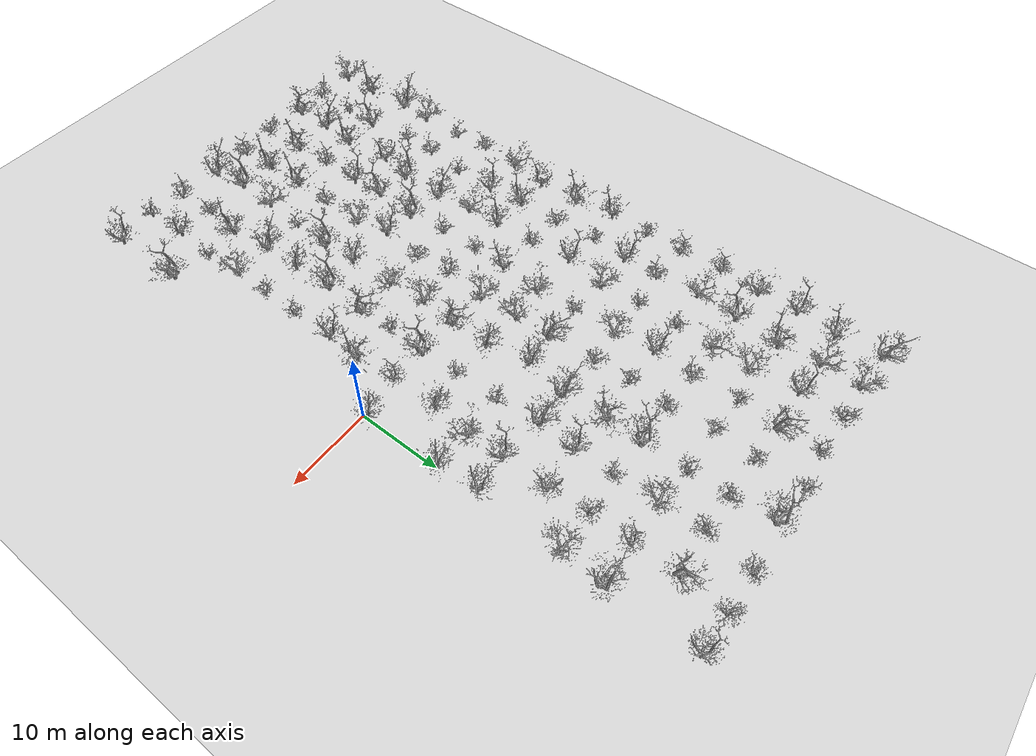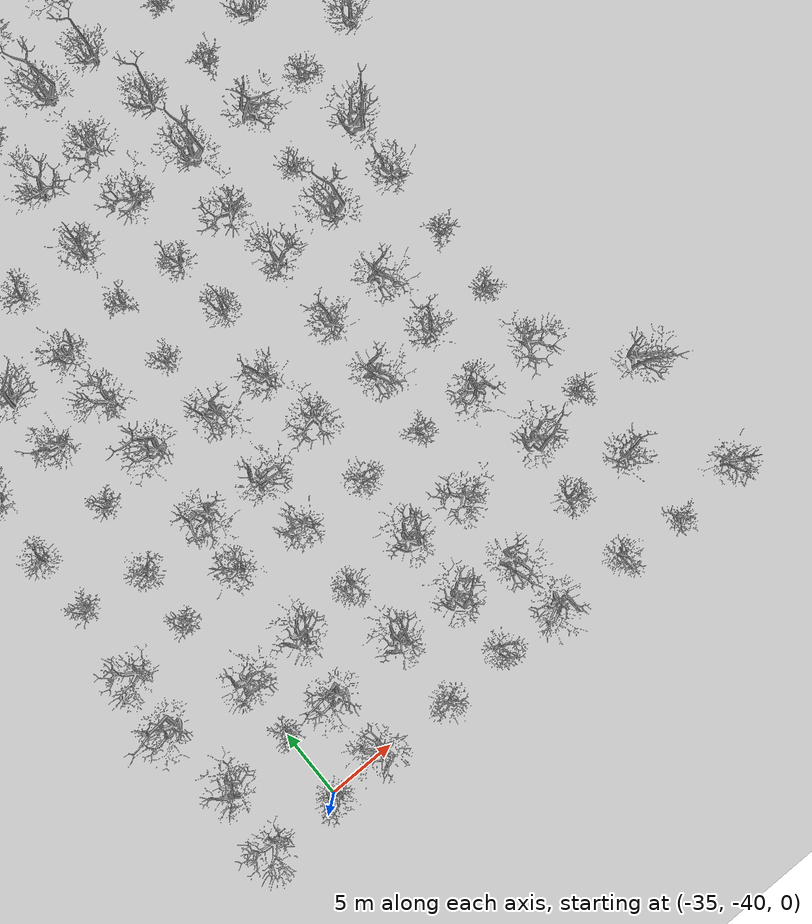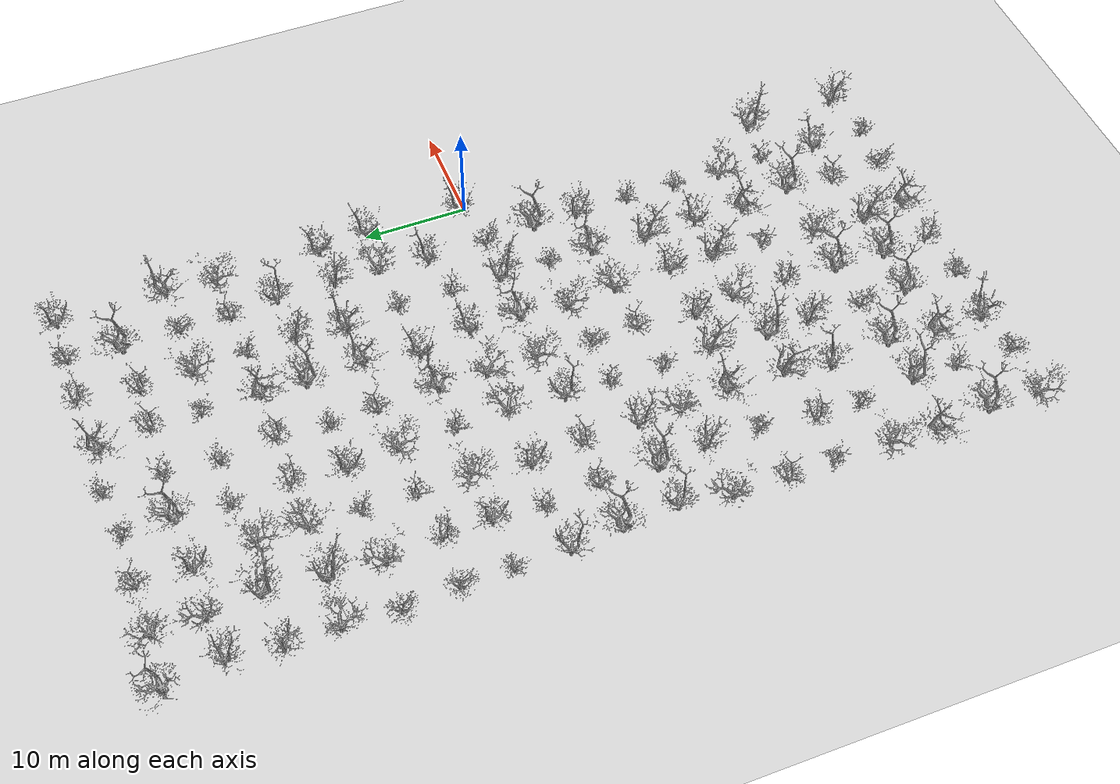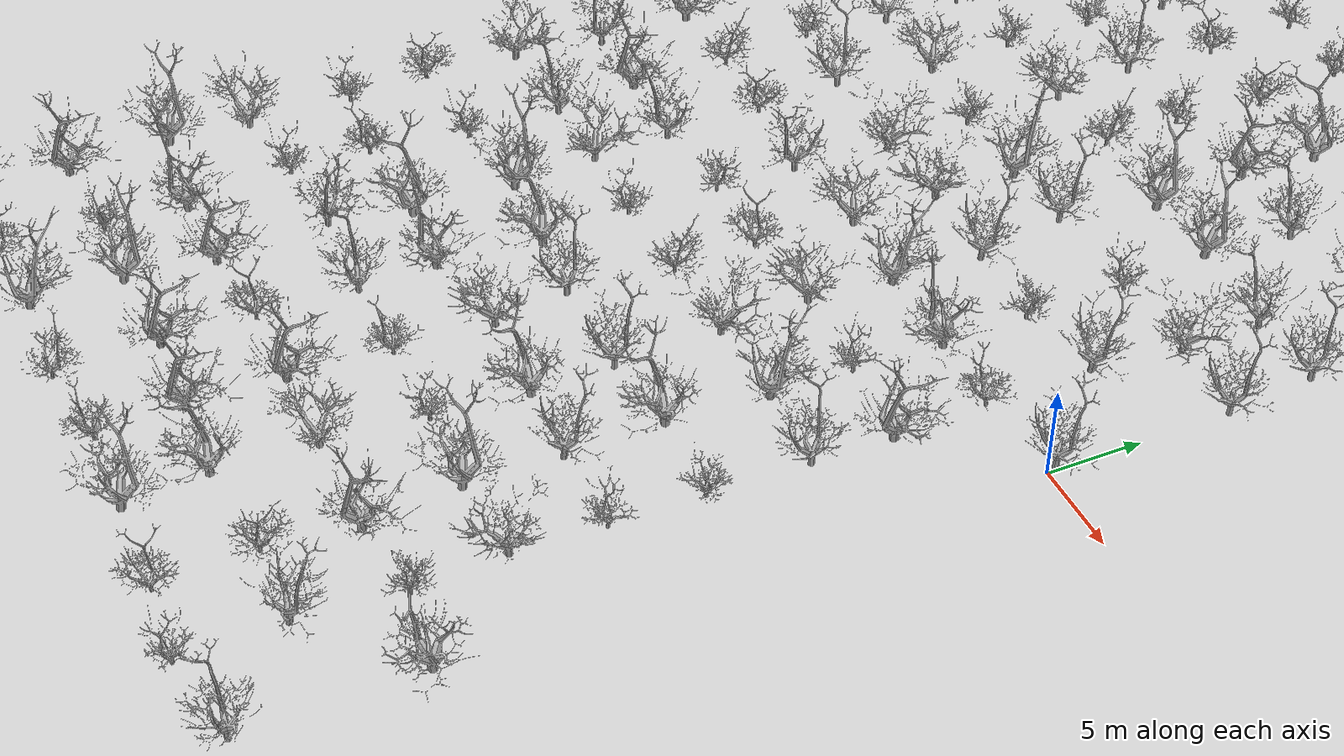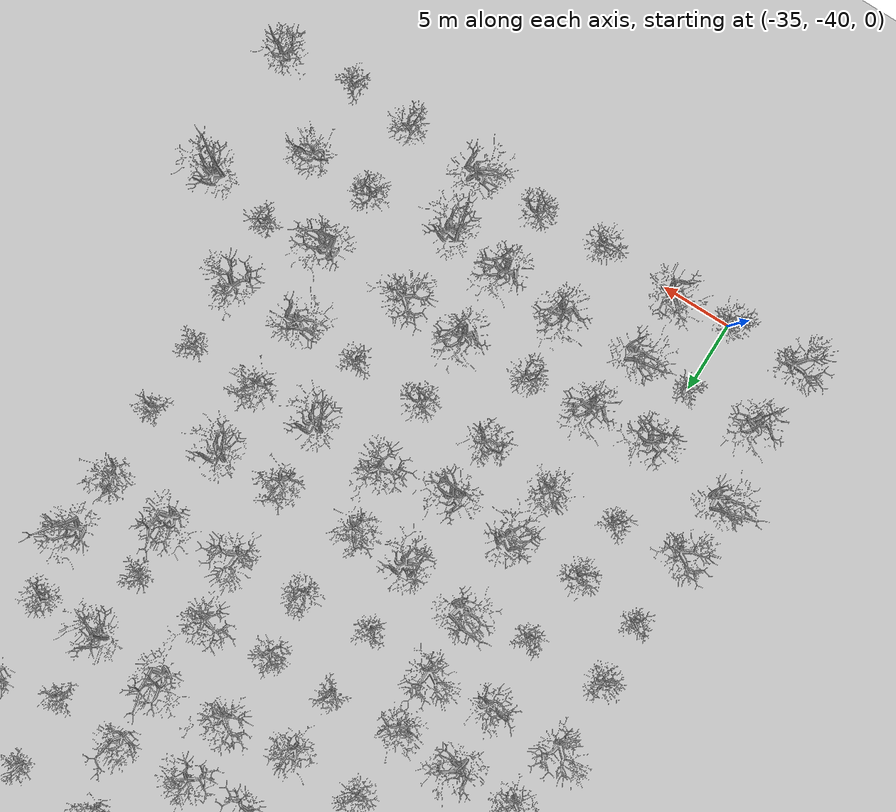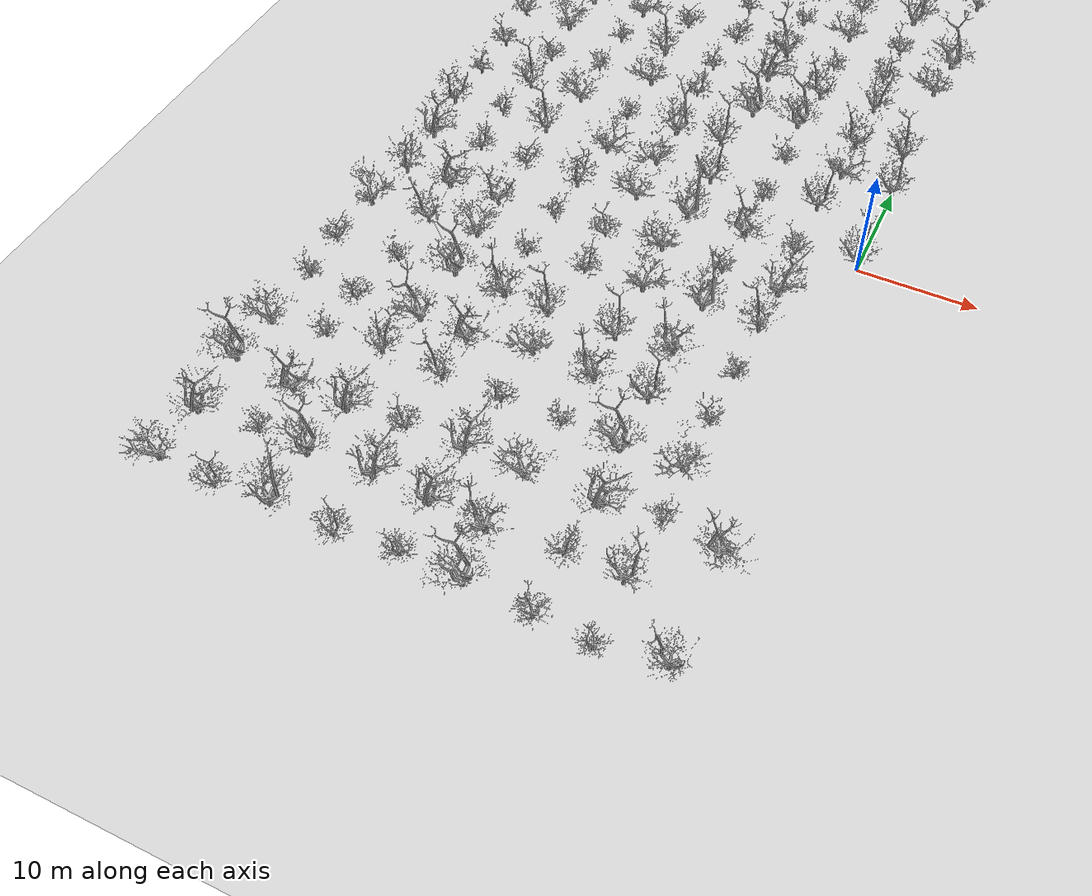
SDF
<sdf version="1.8">
 <world name="random_flat_forest">
  <include><uri>model://my_sun</uri></include>
  <model name="ground_plane">
   <static>true</static>
   <link name="link">
    <collision name="collision">
     <geometry><plane><normal>0 0 1</normal><size>100 100</size></plane></geometry>
    </collision>
    <visual name="visual">
     <geometry><plane><normal>0 0 1</normal><size>100 100</size></plane></geometry>
     <material>
      <script><uri>file://media/materials/scripts/gazebo.material</uri><name>Gazebo/Gray</name></script>
     </material>
    </visual>
   </link>
  </model>
  <include>
   <uri>model://random_tree_0</uri>
   <name>tree_0</name>
   <pose>-40.01 -39.97 0 0 0 3.14</pose>
   <scale>0.93 0.94 0.96</scale>
  </include>
  <include>
   <uri>model://random_tree_2</uri>
   <name>tree_1</name>
   <pose>-40.01 -35.19 0 0 0 4.99</pose>
   <scale>1.17 1.10 1.18</scale>
  </include>
  <include>
   <uri>model://random_tree_2</uri>
   <name>tree_2</name>
   <pose>-40.37 -29.66 0 0 0 1.32</pose>
   <scale>0.91 0.86 1.12</scale>
  </include>
  <include>
   <uri>model://random_tree_0</uri>
   <name>tree_3</name>
   <pose>-40.09 -25.31 0 0 0 2.76</pose>
   <scale>0.94 0.99 0.94</scale>
  </include>
  <include>
   <uri>model://random_tree_1</uri>
   <name>tree_4</name>
   <pose>-40.06 -19.65 0 0 0 3.31</pose>
   <scale>0.97 0.99 1.16</scale>
  </include>
  <include>
   <uri>model://random_tree_4</uri>
   <name>tree_5</name>
   <pose>-40.36 -15.18 0 0 0 3.28</pose>
   <scale>1.16 1.10 0.96</scale>
  </include>
  <include>
   <uri>model://random_tree_0</uri>
   <name>tree_6</name>
   <pose>-40.05 -10.08 0 0 0 1.31</pose>
   <scale>1.19 1.26 0.94</scale>
  </include>
  <include>
   <uri>model://random_tree_3</uri>
   <name>tree_7</name>
   <pose>-39.37 -5.23 0 0 0 4.28</pose>
   <scale>1.16 1.12 1.19</scale>
  </include>
  <include>
   <uri>model://random_tree_2</uri>
   <name>tree_8</name>
   <pose>-39.62 0.01 0 0 0 5.11</pose>
   <scale>1.17 1.12 1.05</scale>
  </include>
  <include>
   <uri>model://random_tree_3</uri>
   <name>tree_9</name>
   <pose>-40.18 5.02 0 0 0 3.60</pose>
   <scale>1.07 1.17 1.02</scale>
  </include>
  <include>
   <uri>model://random_tree_1</uri>
   <name>tree_10</name>
   <pose>-40.07 10.03 0 0 0 0.70</pose>
   <scale>1.18 1.29 0.99</scale>
  </include>
  <include>
   <uri>model://random_tree_4</uri>
   <name>tree_11</name>
   <pose>-39.96 14.83 0 0 0 0.68</pose>
   <scale>1.03 0.97 1.19</scale>
  </include>
  <include>
   <uri>model://random_tree_4</uri>
   <name>tree_12</name>
   <pose>-40.37 20.08 0 0 0 0.91</pose>
   <scale>0.93 0.94 1.06</scale>
  </include>
  <include>
   <uri>model://random_tree_0</uri>
   <name>tree_13</name>
   <pose>-40.07 25.15 0 0 0 5.13</pose>
   <scale>1.17 1.10 0.93</scale>
  </include>
  <include>
   <uri>model://random_tree_3</uri>
   <name>tree_14</name>
   <pose>-40.19 30.01 0 0 0 1.97</pose>
   <scale>1.08 1.01 0.97</scale>
  </include>
  <include>
   <uri>model://random_tree_3</uri>
   <name>tree_15</name>
   <pose>-39.61 34.84 0 0 0 3.02</pose>
   <scale>1.16 1.19 1.04</scale>
  </include>
  <include>
   <uri>model://random_tree_2</uri>
   <name>tree_16</name>
   <pose>-40.22 40.05 0 0 0 0.13</pose>
   <scale>1.04 1.07 1.15</scale>
  </include>
  <include>
   <uri>model://random_tree_4</uri>
   <name>tree_17</name>
   <pose>-34.87 -40.34 0 0 0 6.01</pose>
   <scale>1.14 1.09 1.17</scale>
  </include>
  <include>
   <uri>model://random_tree_1</uri>
   <name>tree_18</name>
   <pose>-34.81 -34.84 0 0 0 4.58</pose>
   <scale>0.99 0.95 1.01</scale>
  </include>
  <include>
   <uri>model://random_tree_2</uri>
   <name>tree_19</name>
   <pose>-34.69 -30.43 0 0 0 4.15</pose>
   <scale>0.97 0.94 0.97</scale>
  </include>
  <include>
   <uri>model://random_tree_1</uri>
   <name>tree_20</name>
   <pose>-35.39 -24.63 0 0 0 2.93</pose>
   <scale>1.01 1.06 0.95</scale>
  </include>
  <include>
   <uri>model://random_tree_4</uri>
   <name>tree_21</name>
   <pose>-35.30 -20.29 0 0 0 2.47</pose>
   <scale>0.91 0.96 1.04</scale>
  </include>
  <include>
   <uri>model://random_tree_1</uri>
   <name>tree_22</name>
   <pose>-34.55 -15.01 0 0 0 3.07</pose>
   <scale>1.11 1.20 1.17</scale>
  </include>
  <include>
   <uri>model://random_tree_3</uri>
   <name>tree_23</name>
   <pose>-34.55 -9.85 0 0 0 2.32</pose>
   <scale>1.09 1.11 1.16</scale>
  </include>
  <include>
   <uri>model://random_tree_2</uri>
   <name>tree_24</name>
   <pose>-35.03 -5.23 0 0 0 4.52</pose>
   <scale>0.99 1.05 1.12</scale>
  </include>
  <include>
   <uri>model://random_tree_4</uri>
   <name>tree_25</name>
   <pose>-34.90 0.19 0 0 0 4.18</pose>
   <scale>0.98 1.03 0.98</scale>
  </include>
  <include>
   <uri>model://random_tree_1</uri>
   <name>tree_26</name>
   <pose>-35.40 5.39 0 0 0 6.17</pose>
   <scale>1.17 1.17 0.93</scale>
  </include>
  <include>
   <uri>model://random_tree_3</uri>
   <name>tree_27</name>
   <pose>-34.89 10.08 0 0 0 0.99</pose>
   <scale>1.13 1.15 1.10</scale>
  </include>
  <include>
   <uri>model://random_tree_4</uri>
   <name>tree_28</name>
   <pose>-34.95 14.57 0 0 0 2.07</pose>
   <scale>0.94 0.91 0.97</scale>
  </include>
  <include>
   <uri>model://random_tree_0</uri>
   <name>tree_29</name>
   <pose>-35.50 19.73 0 0 0 1.52</pose>
   <scale>1.01 1.00 1.03</scale>
  </include>
  <include>
   <uri>model://random_tree_2</uri>
   <name>tree_30</name>
   <pose>-35.17 24.80 0 0 0 3.57</pose>
   <scale>1.14 1.10 0.96</scale>
  </include>
  <include>
   <uri>model://random_tree_2</uri>
   <name>tree_31</name>
   <pose>-34.64 30.33 0 0 0 4.04</pose>
   <scale>0.98 1.03 1.20</scale>
  </include>
  <include>
   <uri>model://random_tree_0</uri>
   <name>tree_32</name>
   <pose>-35.14 35.15 0 0 0 1.77</pose>
   <scale>1.00 1.00 1.12</scale>
  </include>
  <include>
   <uri>model://random_tree_0</uri>
   <name>tree_33</name>
   <pose>-34.96 39.82 0 0 0 2.58</pose>
   <scale>1.10 1.08 1.13</scale>
  </include>
  <include>
   <uri>model://random_tree_2</uri>
   <name>tree_34</name>
   <pose>-30.51 -39.88 0 0 0 0.13</pose>
   <scale>1.00 0.97 1.02</scale>
  </include>
  <include>
   <uri>model://random_tree_2</uri>
   <name>tree_35</name>
   <pose>-30.52 -35.08 0 0 0 1.08</pose>
   <scale>1.16 1.12 1.00</scale>
  </include>
  <include>
   <uri>model://random_tree_2</uri>
   <name>tree_36</name>
   <pose>-30.03 -30.40 0 0 0 5.07</pose>
   <scale>0.94 0.89 0.95</scale>
  </include>
  <include>
   <uri>model://random_tree_3</uri>
   <name>tree_37</name>
   <pose>-30.59 -24.29 0 0 0 4.98</pose>
   <scale>1.03 0.93 1.18</scale>
  </include>
  <include>
   <uri>model://random_tree_2</uri>
   <name>tree_38</name>
   <pose>-29.62 -20.03 0 0 0 2.29</pose>
   <scale>0.99 0.96 0.93</scale>
  </include>
  <include>
   <uri>model://random_tree_2</uri>
   <name>tree_39</name>
   <pose>-29.56 -14.43 0 0 0 1.05</pose>
   <scale>1.00 0.97 0.90</scale>
  </include>
  <include>
   <uri>model://random_tree_0</uri>
   <name>tree_40</name>
   <pose>-30.03 -9.72 0 0 0 1.65</pose>
   <scale>1.10 1.12 1.02</scale>
  </include>
  <include>
   <uri>model://random_tree_3</uri>
   <name>tree_41</name>
   <pose>-30.23 -5.42 0 0 0 3.04</pose>
   <scale>0.98 0.91 0.90</scale>
  </include>
  <include>
   <uri>model://random_tree_4</uri>
   <name>tree_42</name>
   <pose>-30.28 -0.03 0 0 0 2.96</pose>
   <scale>1.01 1.07 1.02</scale>
  </include>
  <include>
   <uri>model://random_tree_3</uri>
   <name>tree_43</name>
   <pose>-30.76 4.90 0 0 0 1.15</pose>
   <scale>1.10 1.16 1.01</scale>
  </include>
  <include>
   <uri>model://random_tree_0</uri>
   <name>tree_44</name>
   <pose>-29.77 10.18 0 0 0 2.87</pose>
   <scale>1.12 1.23 1.20</scale>
  </include>
  <include>
   <uri>model://random_tree_1</uri>
   <name>tree_45</name>
   <pose>-30.12 15.10 0 0 0 5.16</pose>
   <scale>1.13 1.24 0.96</scale>
  </include>
  <include>
   <uri>model://random_tree_1</uri>
   <name>tree_46</name>
   <pose>-30.07 20.11 0 0 0 4.24</pose>
   <scale>0.94 0.94 1.01</scale>
  </include>
  <include>
   <uri>model://random_tree_0</uri>
   <name>tree_47</name>
   <pose>-29.84 24.80 0 0 0 0.57</pose>
   <scale>0.90 0.85 0.98</scale>
  </include>
  <include>
   <uri>model://random_tree_0</uri>
   <name>tree_48</name>
   <pose>-29.64 29.34 0 0 0 3.39</pose>
   <scale>1.06 1.14 1.03</scale>
  </include>
  <include>
   <uri>model://random_tree_3</uri>
   <name>tree_49</name>
   <pose>-30.32 34.88 0 0 0 1.20</pose>
   <scale>0.95 1.01 1.12</scale>
  </include>
  <include>
   <uri>model://random_tree_4</uri>
   <name>tree_50</name>
   <pose>-30.16 39.81 0 0 0 4.32</pose>
   <scale>1.01 1.00 1.16</scale>
  </include>
  <include>
   <uri>model://random_tree_4</uri>
   <name>tree_51</name>
   <pose>-24.99 -40.27 0 0 0 5.31</pose>
   <scale>1.15 1.22 1.00</scale>
  </include>
  <include>
   <uri>model://random_tree_2</uri>
   <name>tree_52</name>
   <pose>-25.12 -34.82 0 0 0 5.41</pose>
   <scale>0.98 1.04 0.99</scale>
  </include>
  <include>
   <uri>model://random_tree_4</uri>
   <name>tree_53</name>
   <pose>-25.16 -29.96 0 0 0 0.81</pose>
   <scale>1.06 0.96 1.10</scale>
  </include>
  <include>
   <uri>model://random_tree_3</uri>
   <name>tree_54</name>
   <pose>-25.07 -24.65 0 0 0 1.97</pose>
   <scale>1.09 1.17 1.12</scale>
  </include>
  <include>
   <uri>model://random_tree_2</uri>
   <name>tree_55</name>
   <pose>-25.26 -20.44 0 0 0 4.01</pose>
   <scale>1.16 1.09 1.16</scale>
  </include>
  <include>
   <uri>model://random_tree_2</uri>
   <name>tree_56</name>
   <pose>-24.76 -14.89 0 0 0 2.68</pose>
   <scale>0.98 0.96 1.13</scale>
  </include>
  <include>
   <uri>model://random_tree_1</uri>
   <name>tree_57</name>
   <pose>-25.23 -9.92 0 0 0 3.34</pose>
   <scale>0.96 0.96 1.01</scale>
  </include>
  <include>
   <uri>model://random_tree_1</uri>
   <name>tree_58</name>
   <pose>-25.13 -4.98 0 0 0 5.95</pose>
   <scale>1.16 1.25 1.02</scale>
  </include>
  <include>
   <uri>model://random_tree_3</uri>
   <name>tree_59</name>
   <pose>-25.05 -0.54 0 0 0 3.97</pose>
   <scale>1.16 1.27 0.90</scale>
  </include>
  <include>
   <uri>model://random_tree_0</uri>
   <name>tree_60</name>
   <pose>-24.61 4.72 0 0 0 6.10</pose>
   <scale>1.07 1.14 1.02</scale>
  </include>
  <include>
   <uri>model://random_tree_1</uri>
   <name>tree_61</name>
   <pose>-24.82 9.64 0 0 0 5.00</pose>
   <scale>1.02 0.94 1.09</scale>
  </include>
  <include>
   <uri>model://random_tree_0</uri>
   <name>tree_62</name>
   <pose>-24.84 15.20 0 0 0 3.59</pose>
   <scale>1.05 1.00 0.90</scale>
  </include>
  <include>
   <uri>model://random_tree_3</uri>
   <name>tree_63</name>
   <pose>-25.42 19.91 0 0 0 0.95</pose>
   <scale>1.02 1.02 1.20</scale>
  </include>
  <include>
   <uri>model://random_tree_4</uri>
   <name>tree_64</name>
   <pose>-25.06 24.98 0 0 0 2.41</pose>
   <scale>0.93 0.96 1.06</scale>
  </include>
  <include>
   <uri>model://random_tree_1</uri>
   <name>tree_65</name>
   <pose>-25.34 30.25 0 0 0 0.80</pose>
   <scale>1.13 1.20 0.97</scale>
  </include>
  <include>
   <uri>model://random_tree_2</uri>
   <name>tree_66</name>
   <pose>-24.92 35.10 0 0 0 5.87</pose>
   <scale>1.06 1.10 0.95</scale>
  </include>
  <include>
   <uri>model://random_tree_1</uri>
   <name>tree_67</name>
   <pose>-25.03 39.76 0 0 0 3.52</pose>
   <scale>1.03 0.99 1.06</scale>
  </include>
  <include>
   <uri>model://random_tree_4</uri>
   <name>tree_68</name>
   <pose>-20.03 -39.64 0 0 0 1.89</pose>
   <scale>1.13 1.15 1.13</scale>
  </include>
  <include>
   <uri>model://random_tree_2</uri>
   <name>tree_69</name>
   <pose>-20.35 -35.09 0 0 0 4.92</pose>
   <scale>1.08 1.01 1.18</scale>
  </include>
  <include>
   <uri>model://random_tree_2</uri>
   <name>tree_70</name>
   <pose>-20.30 -30.03 0 0 0 5.27</pose>
   <scale>1.10 1.20 1.10</scale>
  </include>
  <include>
   <uri>model://random_tree_4</uri>
   <name>tree_71</name>
   <pose>-19.99 -24.71 0 0 0 2.12</pose>
   <scale>0.97 0.94 0.91</scale>
  </include>
  <include>
   <uri>model://random_tree_0</uri>
   <name>tree_72</name>
   <pose>-19.95 -19.42 0 0 0 3.80</pose>
   <scale>1.10 1.19 1.20</scale>
  </include>
  <include>
   <uri>model://random_tree_3</uri>
   <name>tree_73</name>
   <pose>-20.68 -15.30 0 0 0 1.11</pose>
   <scale>1.04 1.10 0.95</scale>
  </include>
  <include>
   <uri>model://random_tree_4</uri>
   <name>tree_74</name>
   <pose>-20.09 -9.71 0 0 0 4.10</pose>
   <scale>1.14 1.05 1.14</scale>
  </include>
  <include>
   <uri>model://random_tree_4</uri>
   <name>tree_75</name>
   <pose>-20.28 -5.16 0 0 0 0.16</pose>
   <scale>0.96 1.03 1.09</scale>
  </include>
  <include>
   <uri>model://random_tree_0</uri>
   <name>tree_76</name>
   <pose>-19.80 0.20 0 0 0 3.03</pose>
   <scale>0.99 1.05 1.20</scale>
  </include>
  <include>
   <uri>model://random_tree_0</uri>
   <name>tree_77</name>
   <pose>-19.98 5.06 0 0 0 4.30</pose>
   <scale>1.12 1.11 1.08</scale>
  </include>
  <include>
   <uri>model://random_tree_2</uri>
   <name>tree_78</name>
   <pose>-19.96 9.63 0 0 0 0.20</pose>
   <scale>0.95 0.94 1.10</scale>
  </include>
  <include>
   <uri>model://random_tree_4</uri>
   <name>tree_79</name>
   <pose>-20.33 15.47 0 0 0 4.17</pose>
   <scale>0.95 1.02 0.91</scale>
  </include>
  <include>
   <uri>model://random_tree_1</uri>
   <name>tree_80</name>
   <pose>-20.43 19.84 0 0 0 0.63</pose>
   <scale>0.92 0.91 1.09</scale>
  </include>
  <include>
   <uri>model://random_tree_4</uri>
   <name>tree_81</name>
   <pose>-19.97 24.80 0 0 0 3.15</pose>
   <scale>1.03 1.12 0.93</scale>
  </include>
  <include>
   <uri>model://random_tree_1</uri>
   <name>tree_82</name>
   <pose>-20.58 29.96 0 0 0 0.71</pose>
   <scale>1.15 1.19 0.97</scale>
  </include>
  <include>
   <uri>model://random_tree_1</uri>
   <name>tree_83</name>
   <pose>-20.08 34.87 0 0 0 0.19</pose>
   <scale>0.91 0.92 1.18</scale>
  </include>
  <include>
   <uri>model://random_tree_1</uri>
   <name>tree_84</name>
   <pose>-20.15 40.29 0 0 0 0.82</pose>
   <scale>1.11 1.02 1.03</scale>
  </include>
  <include>
   <uri>model://random_tree_2</uri>
   <name>tree_85</name>
   <pose>-15.09 -39.82 0 0 0 1.36</pose>
   <scale>0.97 0.90 0.94</scale>
  </include>
  <include>
   <uri>model://random_tree_2</uri>
   <name>tree_86</name>
   <pose>-15.64 -35.41 0 0 0 2.81</pose>
   <scale>0.97 1.06 1.18</scale>
  </include>
  <include>
   <uri>model://random_tree_0</uri>
   <name>tree_87</name>
   <pose>-15.34 -30.15 0 0 0 2.70</pose>
   <scale>1.07 0.98 0.91</scale>
  </include>
  <include>
   <uri>model://random_tree_1</uri>
   <name>tree_88</name>
   <pose>-14.93 -24.78 0 0 0 3.36</pose>
   <scale>1.18 1.17 0.98</scale>
  </include>
  <include>
   <uri>model://random_tree_2</uri>
   <name>tree_89</name>
   <pose>-14.62 -19.76 0 0 0 2.93</pose>
   <scale>0.99 0.89 1.14</scale>
  </include>
  <include>
   <uri>model://random_tree_3</uri>
   <name>tree_90</name>
   <pose>-14.79 -15.35 0 0 0 0.57</pose>
   <scale>0.95 0.92 0.93</scale>
  </include>
  <include>
   <uri>model://random_tree_0</uri>
   <name>tree_91</name>
   <pose>-14.98 -9.58 0 0 0 0.51</pose>
   <scale>1.20 1.11 1.11</scale>
  </include>
  <include>
   <uri>model://random_tree_0</uri>
   <name>tree_92</name>
   <pose>-15.33 -4.64 0 0 0 3.42</pose>
   <scale>1.16 1.22 0.95</scale>
  </include>
  <include>
   <uri>model://random_tree_2</uri>
   <name>tree_93</name>
   <pose>-14.92 -0.13 0 0 0 6.09</pose>
   <scale>0.93 0.88 0.90</scale>
  </include>
  <include>
   <uri>model://random_tree_3</uri>
   <name>tree_94</name>
   <pose>-14.78 4.79 0 0 0 6.13</pose>
   <scale>0.92 0.87 1.08</scale>
  </include>
  <include>
   <uri>model://random_tree_3</uri>
   <name>tree_95</name>
   <pose>-15.80 9.92 0 0 0 0.28</pose>
   <scale>1.20 1.27 0.90</scale>
  </include>
  <include>
   <uri>model://random_tree_2</uri>
   <name>tree_96</name>
   <pose>-14.66 15.02 0 0 0 0.91</pose>
   <scale>0.91 0.96 1.01</scale>
  </include>
  <include>
   <uri>model://random_tree_2</uri>
   <name>tree_97</name>
   <pose>-15.15 20.51 0 0 0 4.67</pose>
   <scale>1.00 0.91 1.05</scale>
  </include>
  <include>
   <uri>model://random_tree_2</uri>
   <name>tree_98</name>
   <pose>-14.82 24.74 0 0 0 2.02</pose>
   <scale>1.14 1.11 0.90</scale>
  </include>
  <include>
   <uri>model://random_tree_1</uri>
   <name>tree_99</name>
   <pose>-14.95 30.20 0 0 0 3.18</pose>
   <scale>1.02 1.02 1.12</scale>
  </include>
  <include>
   <uri>model://random_tree_4</uri>
   <name>tree_100</name>
   <pose>-14.94 34.86 0 0 0 3.22</pose>
   <scale>0.96 0.90 1.03</scale>
  </include>
  <include>
   <uri>model://random_tree_2</uri>
   <name>tree_101</name>
   <pose>-15.48 39.55 0 0 0 1.54</pose>
   <scale>1.19 1.15 0.98</scale>
  </include>
  <include>
   <uri>model://random_tree_4</uri>
   <name>tree_102</name>
   <pose>-9.58 -40.06 0 0 0 0.60</pose>
   <scale>1.12 1.05 0.99</scale>
  </include>
  <include>
   <uri>model://random_tree_4</uri>
   <name>tree_103</name>
   <pose>-9.92 -34.88 0 0 0 3.64</pose>
   <scale>1.13 1.09 1.19</scale>
  </include>
  <include>
   <uri>model://random_tree_2</uri>
   <name>tree_104</name>
   <pose>-9.41 -30.20 0 0 0 4.65</pose>
   <scale>0.96 0.97 0.95</scale>
  </include>
  <include>
   <uri>model://random_tree_2</uri>
   <name>tree_105</name>
   <pose>-10.07 -25.07 0 0 0 1.39</pose>
   <scale>1.15 1.17 1.02</scale>
  </include>
  <include>
   <uri>model://random_tree_3</uri>
   <name>tree_106</name>
   <pose>-10.00 -20.03 0 0 0 0.05</pose>
   <scale>1.17 1.12 0.93</scale>
  </include>
  <include>
   <uri>model://random_tree_2</uri>
   <name>tree_107</name>
   <pose>-10.18 -14.77 0 0 0 2.87</pose>
   <scale>0.95 0.91 1.19</scale>
  </include>
  <include>
   <uri>model://random_tree_2</uri>
   <name>tree_108</name>
   <pose>-9.85 -9.41 0 0 0 6.25</pose>
   <scale>1.15 1.26 1.05</scale>
  </include>
  <include>
   <uri>model://random_tree_1</uri>
   <name>tree_109</name>
   <pose>-9.88 -4.99 0 0 0 1.74</pose>
   <scale>1.02 1.10 0.97</scale>
  </include>
  <include>
   <uri>model://random_tree_2</uri>
   <name>tree_110</name>
   <pose>-9.75 -0.14 0 0 0 3.46</pose>
   <scale>1.07 1.01 1.16</scale>
  </include>
  <include>
   <uri>model://random_tree_1</uri>
   <name>tree_111</name>
   <pose>-9.88 4.61 0 0 0 5.08</pose>
   <scale>1.19 1.18 1.19</scale>
  </include>
  <include>
   <uri>model://random_tree_1</uri>
   <name>tree_112</name>
   <pose>-9.82 10.10 0 0 0 2.24</pose>
   <scale>1.18 1.10 1.16</scale>
  </include>
  <include>
   <uri>model://random_tree_2</uri>
   <name>tree_113</name>
   <pose>-10.38 15.18 0 0 0 0.77</pose>
   <scale>1.02 0.99 1.14</scale>
  </include>
  <include>
   <uri>model://random_tree_3</uri>
   <name>tree_114</name>
   <pose>-9.86 19.94 0 0 0 2.10</pose>
   <scale>1.08 1.00 1.16</scale>
  </include>
  <include>
   <uri>model://random_tree_1</uri>
   <name>tree_115</name>
   <pose>-10.00 24.58 0 0 0 4.39</pose>
   <scale>1.04 1.00 1.05</scale>
  </include>
  <include>
   <uri>model://random_tree_0</uri>
   <name>tree_116</name>
   <pose>-10.12 29.70 0 0 0 3.65</pose>
   <scale>1.18 1.22 1.01</scale>
  </include>
  <include>
   <uri>model://random_tree_4</uri>
   <name>tree_117</name>
   <pose>-10.46 34.66 0 0 0 3.18</pose>
   <scale>1.00 0.96 1.07</scale>
  </include>
  <include>
   <uri>model://random_tree_4</uri>
   <name>tree_118</name>
   <pose>-9.58 40.21 0 0 0 2.60</pose>
   <scale>1.01 1.00 0.95</scale>
  </include>
  <include>
   <uri>model://random_tree_1</uri>
   <name>tree_119</name>
   <pose>-5.10 -40.50 0 0 0 2.71</pose>
   <scale>1.20 1.30 1.11</scale>
  </include>
  <include>
   <uri>model://random_tree_3</uri>
   <name>tree_120</name>
   <pose>-5.27 -35.11 0 0 0 5.77</pose>
   <scale>1.14 1.13 1.18</scale>
  </include>
  <include>
   <uri>model://random_tree_1</uri>
   <name>tree_121</name>
   <pose>-4.80 -29.63 0 0 0 5.64</pose>
   <scale>0.92 0.87 1.07</scale>
  </include>
  <include>
   <uri>model://random_tree_0</uri>
   <name>tree_122</name>
   <pose>-5.23 -24.74 0 0 0 4.41</pose>
   <scale>0.99 0.99 0.98</scale>
  </include>
  <include>
   <uri>model://random_tree_1</uri>
   <name>tree_123</name>
   <pose>-5.03 -19.98 0 0 0 1.69</pose>
   <scale>1.11 1.14 1.04</scale>
  </include>
  <include>
   <uri>model://random_tree_1</uri>
   <name>tree_124</name>
   <pose>-5.02 -15.05 0 0 0 4.67</pose>
   <scale>0.90 0.82 1.15</scale>
  </include>
  <include>
   <uri>model://random_tree_3</uri>
   <name>tree_125</name>
   <pose>-4.97 -9.70 0 0 0 1.27</pose>
   <scale>0.98 1.06 1.01</scale>
  </include>
  <include>
   <uri>model://random_tree_2</uri>
   <name>tree_126</name>
   <pose>-4.91 -5.41 0 0 0 5.09</pose>
   <scale>1.19 1.07 1.01</scale>
  </include>
  <include>
   <uri>model://random_tree_4</uri>
   <name>tree_127</name>
   <pose>-5.20 -0.32 0 0 0 1.27</pose>
   <scale>0.95 0.90 0.90</scale>
  </include>
  <include>
   <uri>model://random_tree_3</uri>
   <name>tree_128</name>
   <pose>-5.29 5.49 0 0 0 5.96</pose>
   <scale>0.97 0.88 1.01</scale>
  </include>
  <include>
   <uri>model://random_tree_0</uri>
   <name>tree_129</name>
   <pose>-4.69 10.25 0 0 0 5.96</pose>
   <scale>1.07 1.10 1.20</scale>
  </include>
  <include>
   <uri>model://random_tree_3</uri>
   <name>tree_130</name>
   <pose>-4.76 14.67 0 0 0 2.27</pose>
   <scale>0.94 1.00 1.00</scale>
  </include>
  <include>
   <uri>model://random_tree_3</uri>
   <name>tree_131</name>
   <pose>-4.79 20.20 0 0 0 4.73</pose>
   <scale>1.02 0.95 1.03</scale>
  </include>
  <include>
   <uri>model://random_tree_4</uri>
   <name>tree_132</name>
   <pose>-5.24 24.77 0 0 0 4.61</pose>
   <scale>0.99 1.07 1.11</scale>
  </include>
  <include>
   <uri>model://random_tree_4</uri>
   <name>tree_133</name>
   <pose>-5.04 29.56 0 0 0 0.36</pose>
   <scale>1.13 1.23 1.05</scale>
  </include>
  <include>
   <uri>model://random_tree_2</uri>
   <name>tree_134</name>
   <pose>-5.22 34.95 0 0 0 5.53</pose>
   <scale>1.17 1.26 1.15</scale>
  </include>
  <include>
   <uri>model://random_tree_4</uri>
   <name>tree_135</name>
   <pose>-4.75 39.98 0 0 0 4.67</pose>
   <scale>1.07 1.14 0.90</scale>
  </include>
  <include>
   <uri>model://random_tree_3</uri>
   <name>tree_136</name>
   <pose>-0.04 -39.63 0 0 0 2.15</pose>
   <scale>1.12 1.15 0.91</scale>
  </include>
  <include>
   <uri>model://random_tree_2</uri>
   <name>tree_138</name>
   <pose>-0.20 -30.34 0 0 0 3.52</pose>
   <scale>0.93 0.91 1.20</scale>
  </include>
  <include>
   <uri>model://random_tree_3</uri>
   <name>tree_144</name>
   <pose>-0.21 0.54 0 0 0 0.11</pose>
   <scale>1.15 1.06 1.09</scale>
  </include>
  <include>
   <uri>model://random_tree_3</uri>
   <name>tree_146</name>
   <pose>-0.04 9.91 0 0 0 0.24</pose>
   <scale>1.15 1.15 1.16</scale>
  </include>
  <include>
   <uri>model://random_tree_3</uri>
   <name>tree_147</name>
   <pose>-0.50 14.81 0 0 0 0.73</pose>
   <scale>0.96 0.87 1.06</scale>
  </include>
  <include>
   <uri>model://random_tree_0</uri>
   <name>tree_149</name>
   <pose>-0.43 24.92 0 0 0 3.31</pose>
   <scale>1.10 1.11 1.11</scale>
  </include>
  <include>
   <uri>model://random_tree_2</uri>
   <name>tree_150</name>
   <pose>-0.05 29.70 0 0 0 1.01</pose>
   <scale>1.04 0.97 1.06</scale>
  </include>
  <include>
   <uri>model://random_tree_3</uri>
   <name>tree_152</name>
   <pose>-0.15 39.92 0 0 0 1.24</pose>
   <scale>0.96 0.92 0.94</scale>
  </include>
 </world>
</sdf>
